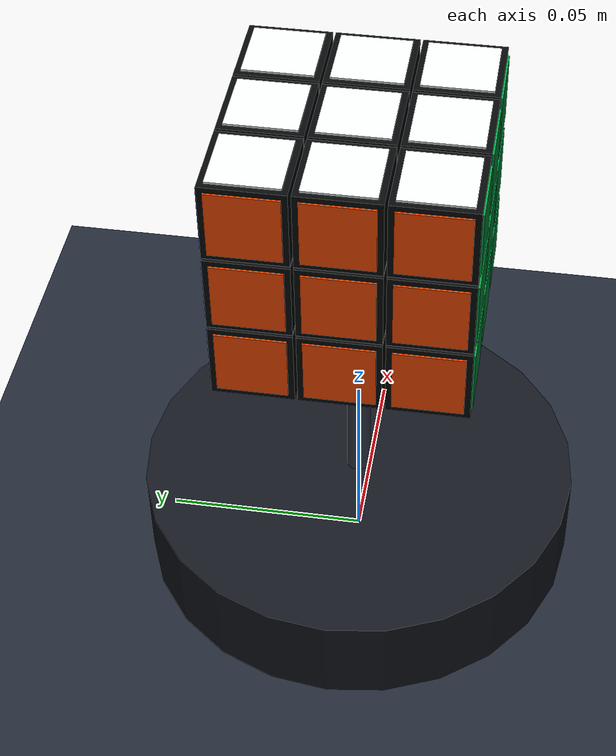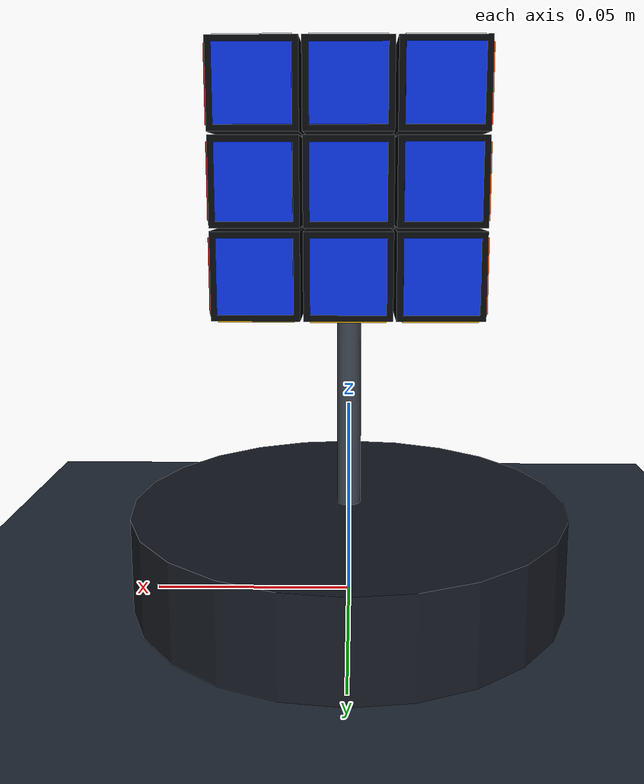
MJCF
<mujoco model="Rubiks cube - switchable weld constraints">
  <compiler angle="radian" autolimits="true" />
  <option timestep=".001" integrator="implicitfast" solver="Newton" iterations="80" tolerance="1e-10" gravity="0 0 -9.81" />
  <default>
    <geom contype="1" conaffinity="2" friction=".8 .002 .0001" />
    <equality solref=".004 1" solimp=".99 .99 .001" />
  </default>
  <visual>
    <global offwidth="1280" offheight="720" />
    <quality shadowsize="4096" offsamples="4" />
    <headlight ambient=".32 .32 .32" diffuse=".5 .5 .5" specular=".15 .15 .15" />
    <rgba haze=".055 .065 .09 1" />
  </visual>
  <asset>
    <texture name="sky" type="skybox" builtin="gradient" rgb1=".035 .045 .07" rgb2=".10 .13 .18" width="512" height="3072" />
    <material name="floor_mat" rgba=".13 .16 .21 1" reflectance=".15" specular=".25" shininess=".4" />
  </asset>
  <worldbody>
    <light pos=".15 -.2 .5" dir="-.25 .3 -1" diffuse=".85 .85 .85" castshadow="true" />
    <light pos="-.2 -.1 .25" dir=".5 .1 -1" diffuse=".45 .48 .55" castshadow="false" />
    <geom name="floor" type="plane" size="1 1 .01" material="floor_mat" contype="2" conaffinity="1" />
    <geom name="plinth" type="cylinder" pos="0 0 .012" size=".055 .012" rgba=".075 .09 .12 1" contype="0" conaffinity="0" />
    <geom name="core_support" type="cylinder" pos="0 0 .051" size=".003 .027" rgba=".22 .25 .3 1" contype="0" conaffinity="0" />
    <body name="core" pos="0.0 0.0 0.105">
      <geom type="sphere" size=".008" rgba=".04 .05 .07 1" contype="0" conaffinity="0" />
      <body name="center_R">
        <joint name="hinge_R" type="hinge" axis="1.0 0.0 0.0" damping=".00002" armature=".000001" />
        <geom type="box" pos="0.02 0.0 0.0" size=".00965 .00965 .00965" mass=".006" rgba=".025 .029 .035 1" />
        <geom type="box" pos="0.02985 0.0 0.0" size="0.00025 0.00825 0.00825" mass="0" rgba=".82 .035 .055 1" contype="0" conaffinity="0" />
      </body>
      <body name="center_L">
        <joint name="hinge_L" type="hinge" axis="-1.0 -0.0 -0.0" damping=".00002" armature=".000001" />
        <geom type="box" pos="-0.02 -0.0 -0.0" size=".00965 .00965 .00965" mass=".006" rgba=".025 .029 .035 1" />
        <geom type="box" pos="-0.02985 -0.0 -0.0" size="0.00025 0.00825 0.00825" mass="0" rgba="1 .30 .015 1" contype="0" conaffinity="0" />
      </body>
      <body name="center_U">
        <joint name="hinge_U" type="hinge" axis="0.0 0.0 1.0" damping=".00002" armature=".000001" />
        <geom type="box" pos="0.0 0.0 0.02" size=".00965 .00965 .00965" mass=".006" rgba=".025 .029 .035 1" />
        <geom type="box" pos="0.0 0.0 0.02985" size="0.00825 0.00825 0.00025" mass="0" rgba=".94 .95 .96 1" contype="0" conaffinity="0" />
      </body>
      <body name="center_D">
        <joint name="hinge_D" type="hinge" axis="-0.0 -0.0 -1.0" damping=".00002" armature=".000001" />
        <geom type="box" pos="-0.0 -0.0 -0.02" size=".00965 .00965 .00965" mass=".006" rgba=".025 .029 .035 1" />
        <geom type="box" pos="-0.0 -0.0 -0.02985" size="0.00825 0.00825 0.00025" mass="0" rgba="1 .77 .015 1" contype="0" conaffinity="0" />
      </body>
      <body name="center_F">
        <joint name="hinge_F" type="hinge" axis="-0.0 -1.0 -0.0" damping=".00002" armature=".000001" />
        <geom type="box" pos="-0.0 -0.02 -0.0" size=".00965 .00965 .00965" mass=".006" rgba=".025 .029 .035 1" />
        <geom type="box" pos="-0.0 -0.02985 -0.0" size="0.00825 0.00025 0.00825" mass="0" rgba=".015 .63 .27 1" contype="0" conaffinity="0" />
      </body>
      <body name="center_B">
        <joint name="hinge_B" type="hinge" axis="0.0 1.0 0.0" damping=".00002" armature=".000001" />
        <geom type="box" pos="0.0 0.02 0.0" size=".00965 .00965 .00965" mass=".006" rgba=".025 .029 .035 1" />
        <geom type="box" pos="0.0 0.02985 0.0" size="0.00825 0.00025 0.00825" mass="0" rgba=".025 .19 .85 1" contype="0" conaffinity="0" />
      </body>
    </body>
    <body name="piece_00" pos="-0.02 -0.02 0.08499999999999999">
      <freejoint name="piece_00_free" />
      <geom type="box" pos="0.0 0.0 0.0" size=".00965 .00965 .00965" mass=".006" rgba=".025 .029 .035 1" />
      <geom type="box" pos="-0.00985 0.0 0.0" size="0.00025 0.00825 0.00825" mass="0" rgba="1 .30 .015 1" contype="0" conaffinity="0" />
      <geom type="box" pos="0.0 -0.00985 0.0" size="0.00825 0.00025 0.00825" mass="0" rgba=".015 .63 .27 1" contype="0" conaffinity="0" />
      <geom type="box" pos="0.0 0.0 -0.00985" size="0.00825 0.00825 0.00025" mass="0" rgba="1 .77 .015 1" contype="0" conaffinity="0" />
    </body>
    <body name="piece_01" pos="-0.02 -0.02 0.105">
      <freejoint name="piece_01_free" />
      <geom type="box" pos="0.0 0.0 0.0" size=".00965 .00965 .00965" mass=".006" rgba=".025 .029 .035 1" />
      <geom type="box" pos="-0.00985 0.0 0.0" size="0.00025 0.00825 0.00825" mass="0" rgba="1 .30 .015 1" contype="0" conaffinity="0" />
      <geom type="box" pos="0.0 -0.00985 0.0" size="0.00825 0.00025 0.00825" mass="0" rgba=".015 .63 .27 1" contype="0" conaffinity="0" />
    </body>
    <body name="piece_02" pos="-0.02 -0.02 0.125">
      <freejoint name="piece_02_free" />
      <geom type="box" pos="0.0 0.0 0.0" size=".00965 .00965 .00965" mass=".006" rgba=".025 .029 .035 1" />
      <geom type="box" pos="-0.00985 0.0 0.0" size="0.00025 0.00825 0.00825" mass="0" rgba="1 .30 .015 1" contype="0" conaffinity="0" />
      <geom type="box" pos="0.0 -0.00985 0.0" size="0.00825 0.00025 0.00825" mass="0" rgba=".015 .63 .27 1" contype="0" conaffinity="0" />
      <geom type="box" pos="0.0 0.0 0.00985" size="0.00825 0.00825 0.00025" mass="0" rgba=".94 .95 .96 1" contype="0" conaffinity="0" />
    </body>
    <body name="piece_03" pos="-0.02 0.0 0.08499999999999999">
      <freejoint name="piece_03_free" />
      <geom type="box" pos="0.0 0.0 0.0" size=".00965 .00965 .00965" mass=".006" rgba=".025 .029 .035 1" />
      <geom type="box" pos="-0.00985 0.0 0.0" size="0.00025 0.00825 0.00825" mass="0" rgba="1 .30 .015 1" contype="0" conaffinity="0" />
      <geom type="box" pos="0.0 0.0 -0.00985" size="0.00825 0.00825 0.00025" mass="0" rgba="1 .77 .015 1" contype="0" conaffinity="0" />
    </body>
    <body name="piece_04" pos="-0.02 0.0 0.125">
      <freejoint name="piece_04_free" />
      <geom type="box" pos="0.0 0.0 0.0" size=".00965 .00965 .00965" mass=".006" rgba=".025 .029 .035 1" />
      <geom type="box" pos="-0.00985 0.0 0.0" size="0.00025 0.00825 0.00825" mass="0" rgba="1 .30 .015 1" contype="0" conaffinity="0" />
      <geom type="box" pos="0.0 0.0 0.00985" size="0.00825 0.00825 0.00025" mass="0" rgba=".94 .95 .96 1" contype="0" conaffinity="0" />
    </body>
    <body name="piece_05" pos="-0.02 0.02 0.08499999999999999">
      <freejoint name="piece_05_free" />
      <geom type="box" pos="0.0 0.0 0.0" size=".00965 .00965 .00965" mass=".006" rgba=".025 .029 .035 1" />
      <geom type="box" pos="-0.00985 0.0 0.0" size="0.00025 0.00825 0.00825" mass="0" rgba="1 .30 .015 1" contype="0" conaffinity="0" />
      <geom type="box" pos="0.0 0.00985 0.0" size="0.00825 0.00025 0.00825" mass="0" rgba=".025 .19 .85 1" contype="0" conaffinity="0" />
      <geom type="box" pos="0.0 0.0 -0.00985" size="0.00825 0.00825 0.00025" mass="0" rgba="1 .77 .015 1" contype="0" conaffinity="0" />
    </body>
    <body name="piece_06" pos="-0.02 0.02 0.105">
      <freejoint name="piece_06_free" />
      <geom type="box" pos="0.0 0.0 0.0" size=".00965 .00965 .00965" mass=".006" rgba=".025 .029 .035 1" />
      <geom type="box" pos="-0.00985 0.0 0.0" size="0.00025 0.00825 0.00825" mass="0" rgba="1 .30 .015 1" contype="0" conaffinity="0" />
      <geom type="box" pos="0.0 0.00985 0.0" size="0.00825 0.00025 0.00825" mass="0" rgba=".025 .19 .85 1" contype="0" conaffinity="0" />
    </body>
    <body name="piece_07" pos="-0.02 0.02 0.125">
      <freejoint name="piece_07_free" />
      <geom type="box" pos="0.0 0.0 0.0" size=".00965 .00965 .00965" mass=".006" rgba=".025 .029 .035 1" />
      <geom type="box" pos="-0.00985 0.0 0.0" size="0.00025 0.00825 0.00825" mass="0" rgba="1 .30 .015 1" contype="0" conaffinity="0" />
      <geom type="box" pos="0.0 0.00985 0.0" size="0.00825 0.00025 0.00825" mass="0" rgba=".025 .19 .85 1" contype="0" conaffinity="0" />
      <geom type="box" pos="0.0 0.0 0.00985" size="0.00825 0.00825 0.00025" mass="0" rgba=".94 .95 .96 1" contype="0" conaffinity="0" />
    </body>
    <body name="piece_08" pos="0.0 -0.02 0.08499999999999999">
      <freejoint name="piece_08_free" />
      <geom type="box" pos="0.0 0.0 0.0" size=".00965 .00965 .00965" mass=".006" rgba=".025 .029 .035 1" />
      <geom type="box" pos="0.0 -0.00985 0.0" size="0.00825 0.00025 0.00825" mass="0" rgba=".015 .63 .27 1" contype="0" conaffinity="0" />
      <geom type="box" pos="0.0 0.0 -0.00985" size="0.00825 0.00825 0.00025" mass="0" rgba="1 .77 .015 1" contype="0" conaffinity="0" />
    </body>
    <body name="piece_09" pos="0.0 -0.02 0.125">
      <freejoint name="piece_09_free" />
      <geom type="box" pos="0.0 0.0 0.0" size=".00965 .00965 .00965" mass=".006" rgba=".025 .029 .035 1" />
      <geom type="box" pos="0.0 -0.00985 0.0" size="0.00825 0.00025 0.00825" mass="0" rgba=".015 .63 .27 1" contype="0" conaffinity="0" />
      <geom type="box" pos="0.0 0.0 0.00985" size="0.00825 0.00825 0.00025" mass="0" rgba=".94 .95 .96 1" contype="0" conaffinity="0" />
    </body>
    <body name="piece_10" pos="0.0 0.02 0.08499999999999999">
      <freejoint name="piece_10_free" />
      <geom type="box" pos="0.0 0.0 0.0" size=".00965 .00965 .00965" mass=".006" rgba=".025 .029 .035 1" />
      <geom type="box" pos="0.0 0.00985 0.0" size="0.00825 0.00025 0.00825" mass="0" rgba=".025 .19 .85 1" contype="0" conaffinity="0" />
      <geom type="box" pos="0.0 0.0 -0.00985" size="0.00825 0.00825 0.00025" mass="0" rgba="1 .77 .015 1" contype="0" conaffinity="0" />
    </body>
    <body name="piece_11" pos="0.0 0.02 0.125">
      <freejoint name="piece_11_free" />
      <geom type="box" pos="0.0 0.0 0.0" size=".00965 .00965 .00965" mass=".006" rgba=".025 .029 .035 1" />
      <geom type="box" pos="0.0 0.00985 0.0" size="0.00825 0.00025 0.00825" mass="0" rgba=".025 .19 .85 1" contype="0" conaffinity="0" />
      <geom type="box" pos="0.0 0.0 0.00985" size="0.00825 0.00825 0.00025" mass="0" rgba=".94 .95 .96 1" contype="0" conaffinity="0" />
    </body>
    <body name="piece_12" pos="0.02 -0.02 0.08499999999999999">
      <freejoint name="piece_12_free" />
      <geom type="box" pos="0.0 0.0 0.0" size=".00965 .00965 .00965" mass=".006" rgba=".025 .029 .035 1" />
      <geom type="box" pos="0.00985 0.0 0.0" size="0.00025 0.00825 0.00825" mass="0" rgba=".82 .035 .055 1" contype="0" conaffinity="0" />
      <geom type="box" pos="0.0 -0.00985 0.0" size="0.00825 0.00025 0.00825" mass="0" rgba=".015 .63 .27 1" contype="0" conaffinity="0" />
      <geom type="box" pos="0.0 0.0 -0.00985" size="0.00825 0.00825 0.00025" mass="0" rgba="1 .77 .015 1" contype="0" conaffinity="0" />
    </body>
    <body name="piece_13" pos="0.02 -0.02 0.105">
      <freejoint name="piece_13_free" />
      <geom type="box" pos="0.0 0.0 0.0" size=".00965 .00965 .00965" mass=".006" rgba=".025 .029 .035 1" />
      <geom type="box" pos="0.00985 0.0 0.0" size="0.00025 0.00825 0.00825" mass="0" rgba=".82 .035 .055 1" contype="0" conaffinity="0" />
      <geom type="box" pos="0.0 -0.00985 0.0" size="0.00825 0.00025 0.00825" mass="0" rgba=".015 .63 .27 1" contype="0" conaffinity="0" />
    </body>
    <body name="piece_14" pos="0.02 -0.02 0.125">
      <freejoint name="piece_14_free" />
      <geom type="box" pos="0.0 0.0 0.0" size=".00965 .00965 .00965" mass=".006" rgba=".025 .029 .035 1" />
      <geom type="box" pos="0.00985 0.0 0.0" size="0.00025 0.00825 0.00825" mass="0" rgba=".82 .035 .055 1" contype="0" conaffinity="0" />
      <geom type="box" pos="0.0 -0.00985 0.0" size="0.00825 0.00025 0.00825" mass="0" rgba=".015 .63 .27 1" contype="0" conaffinity="0" />
      <geom type="box" pos="0.0 0.0 0.00985" size="0.00825 0.00825 0.00025" mass="0" rgba=".94 .95 .96 1" contype="0" conaffinity="0" />
    </body>
    <body name="piece_15" pos="0.02 0.0 0.08499999999999999">
      <freejoint name="piece_15_free" />
      <geom type="box" pos="0.0 0.0 0.0" size=".00965 .00965 .00965" mass=".006" rgba=".025 .029 .035 1" />
      <geom type="box" pos="0.00985 0.0 0.0" size="0.00025 0.00825 0.00825" mass="0" rgba=".82 .035 .055 1" contype="0" conaffinity="0" />
      <geom type="box" pos="0.0 0.0 -0.00985" size="0.00825 0.00825 0.00025" mass="0" rgba="1 .77 .015 1" contype="0" conaffinity="0" />
    </body>
    <body name="piece_16" pos="0.02 0.0 0.125">
      <freejoint name="piece_16_free" />
      <geom type="box" pos="0.0 0.0 0.0" size=".00965 .00965 .00965" mass=".006" rgba=".025 .029 .035 1" />
      <geom type="box" pos="0.00985 0.0 0.0" size="0.00025 0.00825 0.00825" mass="0" rgba=".82 .035 .055 1" contype="0" conaffinity="0" />
      <geom type="box" pos="0.0 0.0 0.00985" size="0.00825 0.00825 0.00025" mass="0" rgba=".94 .95 .96 1" contype="0" conaffinity="0" />
    </body>
    <body name="piece_17" pos="0.02 0.02 0.08499999999999999">
      <freejoint name="piece_17_free" />
      <geom type="box" pos="0.0 0.0 0.0" size=".00965 .00965 .00965" mass=".006" rgba=".025 .029 .035 1" />
      <geom type="box" pos="0.00985 0.0 0.0" size="0.00025 0.00825 0.00825" mass="0" rgba=".82 .035 .055 1" contype="0" conaffinity="0" />
      <geom type="box" pos="0.0 0.00985 0.0" size="0.00825 0.00025 0.00825" mass="0" rgba=".025 .19 .85 1" contype="0" conaffinity="0" />
      <geom type="box" pos="0.0 0.0 -0.00985" size="0.00825 0.00825 0.00025" mass="0" rgba="1 .77 .015 1" contype="0" conaffinity="0" />
    </body>
    <body name="piece_18" pos="0.02 0.02 0.105">
      <freejoint name="piece_18_free" />
      <geom type="box" pos="0.0 0.0 0.0" size=".00965 .00965 .00965" mass=".006" rgba=".025 .029 .035 1" />
      <geom type="box" pos="0.00985 0.0 0.0" size="0.00025 0.00825 0.00825" mass="0" rgba=".82 .035 .055 1" contype="0" conaffinity="0" />
      <geom type="box" pos="0.0 0.00985 0.0" size="0.00825 0.00025 0.00825" mass="0" rgba=".025 .19 .85 1" contype="0" conaffinity="0" />
    </body>
    <body name="piece_19" pos="0.02 0.02 0.125">
      <freejoint name="piece_19_free" />
      <geom type="box" pos="0.0 0.0 0.0" size=".00965 .00965 .00965" mass=".006" rgba=".025 .029 .035 1" />
      <geom type="box" pos="0.00985 0.0 0.0" size="0.00025 0.00825 0.00825" mass="0" rgba=".82 .035 .055 1" contype="0" conaffinity="0" />
      <geom type="box" pos="0.0 0.00985 0.0" size="0.00825 0.00025 0.00825" mass="0" rgba=".025 .19 .85 1" contype="0" conaffinity="0" />
      <geom type="box" pos="0.0 0.0 0.00985" size="0.00825 0.00825 0.00025" mass="0" rgba=".94 .95 .96 1" contype="0" conaffinity="0" />
    </body>
  </worldbody>
  <actuator>
    <position name="drive_R" joint="hinge_R" kp=".3" kv=".003" forcerange="-.15 .15" />
    <position name="drive_L" joint="hinge_L" kp=".3" kv=".003" forcerange="-.15 .15" />
    <position name="drive_U" joint="hinge_U" kp=".3" kv=".003" forcerange="-.15 .15" />
    <position name="drive_D" joint="hinge_D" kp=".3" kv=".003" forcerange="-.15 .15" />
    <position name="drive_F" joint="hinge_F" kp=".3" kv=".003" forcerange="-.15 .15" />
    <position name="drive_B" joint="hinge_B" kp=".3" kv=".003" forcerange="-.15 .15" />
  </actuator>
  <equality>
    <weld name="piece_00_to_core" body1="core" body2="piece_00" active="true" torquescale=".03" />
    <weld name="piece_00_to_center_R" body1="center_R" body2="piece_00" active="false" torquescale=".03" />
    <weld name="piece_00_to_center_L" body1="center_L" body2="piece_00" active="false" torquescale=".03" />
    <weld name="piece_00_to_center_U" body1="center_U" body2="piece_00" active="false" torquescale=".03" />
    <weld name="piece_00_to_center_D" body1="center_D" body2="piece_00" active="false" torquescale=".03" />
    <weld name="piece_00_to_center_F" body1="center_F" body2="piece_00" active="false" torquescale=".03" />
    <weld name="piece_00_to_center_B" body1="center_B" body2="piece_00" active="false" torquescale=".03" />
    <weld name="piece_01_to_core" body1="core" body2="piece_01" active="true" torquescale=".03" />
    <weld name="piece_01_to_center_R" body1="center_R" body2="piece_01" active="false" torquescale=".03" />
    <weld name="piece_01_to_center_L" body1="center_L" body2="piece_01" active="false" torquescale=".03" />
    <weld name="piece_01_to_center_U" body1="center_U" body2="piece_01" active="false" torquescale=".03" />
    <weld name="piece_01_to_center_D" body1="center_D" body2="piece_01" active="false" torquescale=".03" />
    <weld name="piece_01_to_center_F" body1="center_F" body2="piece_01" active="false" torquescale=".03" />
    <weld name="piece_01_to_center_B" body1="center_B" body2="piece_01" active="false" torquescale=".03" />
    <weld name="piece_02_to_core" body1="core" body2="piece_02" active="true" torquescale=".03" />
    <weld name="piece_02_to_center_R" body1="center_R" body2="piece_02" active="false" torquescale=".03" />
    <weld name="piece_02_to_center_L" body1="center_L" body2="piece_02" active="false" torquescale=".03" />
    <weld name="piece_02_to_center_U" body1="center_U" body2="piece_02" active="false" torquescale=".03" />
    <weld name="piece_02_to_center_D" body1="center_D" body2="piece_02" active="false" torquescale=".03" />
    <weld name="piece_02_to_center_F" body1="center_F" body2="piece_02" active="false" torquescale=".03" />
    <weld name="piece_02_to_center_B" body1="center_B" body2="piece_02" active="false" torquescale=".03" />
    <weld name="piece_03_to_core" body1="core" body2="piece_03" active="true" torquescale=".03" />
    <weld name="piece_03_to_center_R" body1="center_R" body2="piece_03" active="false" torquescale=".03" />
    <weld name="piece_03_to_center_L" body1="center_L" body2="piece_03" active="false" torquescale=".03" />
    <weld name="piece_03_to_center_U" body1="center_U" body2="piece_03" active="false" torquescale=".03" />
    <weld name="piece_03_to_center_D" body1="center_D" body2="piece_03" active="false" torquescale=".03" />
    <weld name="piece_03_to_center_F" body1="center_F" body2="piece_03" active="false" torquescale=".03" />
    <weld name="piece_03_to_center_B" body1="center_B" body2="piece_03" active="false" torquescale=".03" />
    <weld name="piece_04_to_core" body1="core" body2="piece_04" active="true" torquescale=".03" />
    <weld name="piece_04_to_center_R" body1="center_R" body2="piece_04" active="false" torquescale=".03" />
    <weld name="piece_04_to_center_L" body1="center_L" body2="piece_04" active="false" torquescale=".03" />
    <weld name="piece_04_to_center_U" body1="center_U" body2="piece_04" active="false" torquescale=".03" />
    <weld name="piece_04_to_center_D" body1="center_D" body2="piece_04" active="false" torquescale=".03" />
    <weld name="piece_04_to_center_F" body1="center_F" body2="piece_04" active="false" torquescale=".03" />
    <weld name="piece_04_to_center_B" body1="center_B" body2="piece_04" active="false" torquescale=".03" />
    <weld name="piece_05_to_core" body1="core" body2="piece_05" active="true" torquescale=".03" />
    <weld name="piece_05_to_center_R" body1="center_R" body2="piece_05" active="false" torquescale=".03" />
    <weld name="piece_05_to_center_L" body1="center_L" body2="piece_05" active="false" torquescale=".03" />
    <weld name="piece_05_to_center_U" body1="center_U" body2="piece_05" active="false" torquescale=".03" />
    <weld name="piece_05_to_center_D" body1="center_D" body2="piece_05" active="false" torquescale=".03" />
    <weld name="piece_05_to_center_F" body1="center_F" body2="piece_05" active="false" torquescale=".03" />
    <weld name="piece_05_to_center_B" body1="center_B" body2="piece_05" active="false" torquescale=".03" />
    <weld name="piece_06_to_core" body1="core" body2="piece_06" active="true" torquescale=".03" />
    <weld name="piece_06_to_center_R" body1="center_R" body2="piece_06" active="false" torquescale=".03" />
    <weld name="piece_06_to_center_L" body1="center_L" body2="piece_06" active="false" torquescale=".03" />
    <weld name="piece_06_to_center_U" body1="center_U" body2="piece_06" active="false" torquescale=".03" />
    <weld name="piece_06_to_center_D" body1="center_D" body2="piece_06" active="false" torquescale=".03" />
    <weld name="piece_06_to_center_F" body1="center_F" body2="piece_06" active="false" torquescale=".03" />
    <weld name="piece_06_to_center_B" body1="center_B" body2="piece_06" active="false" torquescale=".03" />
    <weld name="piece_07_to_core" body1="core" body2="piece_07" active="true" torquescale=".03" />
    <weld name="piece_07_to_center_R" body1="center_R" body2="piece_07" active="false" torquescale=".03" />
    <weld name="piece_07_to_center_L" body1="center_L" body2="piece_07" active="false" torquescale=".03" />
    <weld name="piece_07_to_center_U" body1="center_U" body2="piece_07" active="false" torquescale=".03" />
    <weld name="piece_07_to_center_D" body1="center_D" body2="piece_07" active="false" torquescale=".03" />
    <weld name="piece_07_to_center_F" body1="center_F" body2="piece_07" active="false" torquescale=".03" />
    <weld name="piece_07_to_center_B" body1="center_B" body2="piece_07" active="false" torquescale=".03" />
    <weld name="piece_08_to_core" body1="core" body2="piece_08" active="true" torquescale=".03" />
    <weld name="piece_08_to_center_R" body1="center_R" body2="piece_08" active="false" torquescale=".03" />
    <weld name="piece_08_to_center_L" body1="center_L" body2="piece_08" active="false" torquescale=".03" />
    <weld name="piece_08_to_center_U" body1="center_U" body2="piece_08" active="false" torquescale=".03" />
    <weld name="piece_08_to_center_D" body1="center_D" body2="piece_08" active="false" torquescale=".03" />
    <weld name="piece_08_to_center_F" body1="center_F" body2="piece_08" active="false" torquescale=".03" />
    <weld name="piece_08_to_center_B" body1="center_B" body2="piece_08" active="false" torquescale=".03" />
    <weld name="piece_09_to_core" body1="core" body2="piece_09" active="true" torquescale=".03" />
    <weld name="piece_09_to_center_R" body1="center_R" body2="piece_09" active="false" torquescale=".03" />
    <weld name="piece_09_to_center_L" body1="center_L" body2="piece_09" active="false" torquescale=".03" />
    <weld name="piece_09_to_center_U" body1="center_U" body2="piece_09" active="false" torquescale=".03" />
    <weld name="piece_09_to_center_D" body1="center_D" body2="piece_09" active="false" torquescale=".03" />
    <weld name="piece_09_to_center_F" body1="center_F" body2="piece_09" active="false" torquescale=".03" />
    <weld name="piece_09_to_center_B" body1="center_B" body2="piece_09" active="false" torquescale=".03" />
    <weld name="piece_10_to_core" body1="core" body2="piece_10" active="true" torquescale=".03" />
    <weld name="piece_10_to_center_R" body1="center_R" body2="piece_10" active="false" torquescale=".03" />
    <weld name="piece_10_to_center_L" body1="center_L" body2="piece_10" active="false" torquescale=".03" />
    <weld name="piece_10_to_center_U" body1="center_U" body2="piece_10" active="false" torquescale=".03" />
    <weld name="piece_10_to_center_D" body1="center_D" body2="piece_10" active="false" torquescale=".03" />
    <weld name="piece_10_to_center_F" body1="center_F" body2="piece_10" active="false" torquescale=".03" />
    <weld name="piece_10_to_center_B" body1="center_B" body2="piece_10" active="false" torquescale=".03" />
    <weld name="piece_11_to_core" body1="core" body2="piece_11" active="true" torquescale=".03" />
    <weld name="piece_11_to_center_R" body1="center_R" body2="piece_11" active="false" torquescale=".03" />
    <weld name="piece_11_to_center_L" body1="center_L" body2="piece_11" active="false" torquescale=".03" />
    <weld name="piece_11_to_center_U" body1="center_U" body2="piece_11" active="false" torquescale=".03" />
    <weld name="piece_11_to_center_D" body1="center_D" body2="piece_11" active="false" torquescale=".03" />
    <weld name="piece_11_to_center_F" body1="center_F" body2="piece_11" active="false" torquescale=".03" />
    <weld name="piece_11_to_center_B" body1="center_B" body2="piece_11" active="false" torquescale=".03" />
    <weld name="piece_12_to_core" body1="core" body2="piece_12" active="true" torquescale=".03" />
    <weld name="piece_12_to_center_R" body1="center_R" body2="piece_12" active="false" torquescale=".03" />
    <weld name="piece_12_to_center_L" body1="center_L" body2="piece_12" active="false" torquescale=".03" />
    <weld name="piece_12_to_center_U" body1="center_U" body2="piece_12" active="false" torquescale=".03" />
    <weld name="piece_12_to_center_D" body1="center_D" body2="piece_12" active="false" torquescale=".03" />
    <weld name="piece_12_to_center_F" body1="center_F" body2="piece_12" active="false" torquescale=".03" />
    <weld name="piece_12_to_center_B" body1="center_B" body2="piece_12" active="false" torquescale=".03" />
    <weld name="piece_13_to_core" body1="core" body2="piece_13" active="true" torquescale=".03" />
    <weld name="piece_13_to_center_R" body1="center_R" body2="piece_13" active="false" torquescale=".03" />
    <weld name="piece_13_to_center_L" body1="center_L" body2="piece_13" active="false" torquescale=".03" />
    <weld name="piece_13_to_center_U" body1="center_U" body2="piece_13" active="false" torquescale=".03" />
    <weld name="piece_13_to_center_D" body1="center_D" body2="piece_13" active="false" torquescale=".03" />
    <weld name="piece_13_to_center_F" body1="center_F" body2="piece_13" active="false" torquescale=".03" />
    <weld name="piece_13_to_center_B" body1="center_B" body2="piece_13" active="false" torquescale=".03" />
    <weld name="piece_14_to_core" body1="core" body2="piece_14" active="true" torquescale=".03" />
    <weld name="piece_14_to_center_R" body1="center_R" body2="piece_14" active="false" torquescale=".03" />
    <weld name="piece_14_to_center_L" body1="center_L" body2="piece_14" active="false" torquescale=".03" />
    <weld name="piece_14_to_center_U" body1="center_U" body2="piece_14" active="false" torquescale=".03" />
    <weld name="piece_14_to_center_D" body1="center_D" body2="piece_14" active="false" torquescale=".03" />
    <weld name="piece_14_to_center_F" body1="center_F" body2="piece_14" active="false" torquescale=".03" />
    <weld name="piece_14_to_center_B" body1="center_B" body2="piece_14" active="false" torquescale=".03" />
    <weld name="piece_15_to_core" body1="core" body2="piece_15" active="true" torquescale=".03" />
    <weld name="piece_15_to_center_R" body1="center_R" body2="piece_15" active="false" torquescale=".03" />
    <weld name="piece_15_to_center_L" body1="center_L" body2="piece_15" active="false" torquescale=".03" />
    <weld name="piece_15_to_center_U" body1="center_U" body2="piece_15" active="false" torquescale=".03" />
    <weld name="piece_15_to_center_D" body1="center_D" body2="piece_15" active="false" torquescale=".03" />
    <weld name="piece_15_to_center_F" body1="center_F" body2="piece_15" active="false" torquescale=".03" />
    <weld name="piece_15_to_center_B" body1="center_B" body2="piece_15" active="false" torquescale=".03" />
    <weld name="piece_16_to_core" body1="core" body2="piece_16" active="true" torquescale=".03" />
    <weld name="piece_16_to_center_R" body1="center_R" body2="piece_16" active="false" torquescale=".03" />
    <weld name="piece_16_to_center_L" body1="center_L" body2="piece_16" active="false" torquescale=".03" />
    <weld name="piece_16_to_center_U" body1="center_U" body2="piece_16" active="false" torquescale=".03" />
    <weld name="piece_16_to_center_D" body1="center_D" body2="piece_16" active="false" torquescale=".03" />
    <weld name="piece_16_to_center_F" body1="center_F" body2="piece_16" active="false" torquescale=".03" />
    <weld name="piece_16_to_center_B" body1="center_B" body2="piece_16" active="false" torquescale=".03" />
    <weld name="piece_17_to_core" body1="core" body2="piece_17" active="true" torquescale=".03" />
    <weld name="piece_17_to_center_R" body1="center_R" body2="piece_17" active="false" torquescale=".03" />
    <weld name="piece_17_to_center_L" body1="center_L" body2="piece_17" active="false" torquescale=".03" />
    <weld name="piece_17_to_center_U" body1="center_U" body2="piece_17" active="false" torquescale=".03" />
    <weld name="piece_17_to_center_D" body1="center_D" body2="piece_17" active="false" torquescale=".03" />
    <weld name="piece_17_to_center_F" body1="center_F" body2="piece_17" active="false" torquescale=".03" />
    <weld name="piece_17_to_center_B" body1="center_B" body2="piece_17" active="false" torquescale=".03" />
    <weld name="piece_18_to_core" body1="core" body2="piece_18" active="true" torquescale=".03" />
    <weld name="piece_18_to_center_R" body1="center_R" body2="piece_18" active="false" torquescale=".03" />
    <weld name="piece_18_to_center_L" body1="center_L" body2="piece_18" active="false" torquescale=".03" />
    <weld name="piece_18_to_center_U" body1="center_U" body2="piece_18" active="false" torquescale=".03" />
    <weld name="piece_18_to_center_D" body1="center_D" body2="piece_18" active="false" torquescale=".03" />
    <weld name="piece_18_to_center_F" body1="center_F" body2="piece_18" active="false" torquescale=".03" />
    <weld name="piece_18_to_center_B" body1="center_B" body2="piece_18" active="false" torquescale=".03" />
    <weld name="piece_19_to_core" body1="core" body2="piece_19" active="true" torquescale=".03" />
    <weld name="piece_19_to_center_R" body1="center_R" body2="piece_19" active="false" torquescale=".03" />
    <weld name="piece_19_to_center_L" body1="center_L" body2="piece_19" active="false" torquescale=".03" />
    <weld name="piece_19_to_center_U" body1="center_U" body2="piece_19" active="false" torquescale=".03" />
    <weld name="piece_19_to_center_D" body1="center_D" body2="piece_19" active="false" torquescale=".03" />
    <weld name="piece_19_to_center_F" body1="center_F" body2="piece_19" active="false" torquescale=".03" />
    <weld name="piece_19_to_center_B" body1="center_B" body2="piece_19" active="false" torquescale=".03" />
  </equality>
</mujoco>
